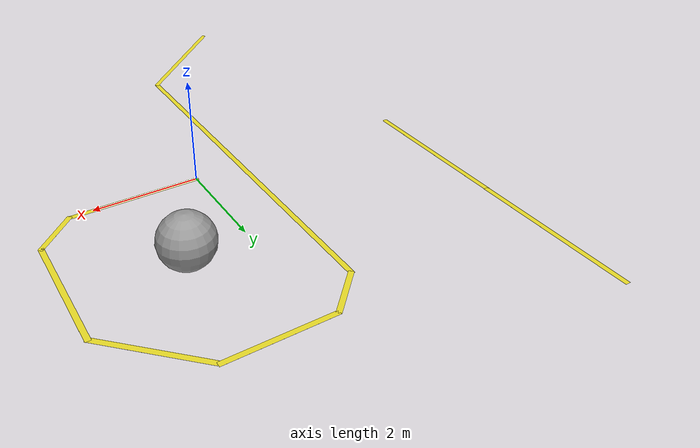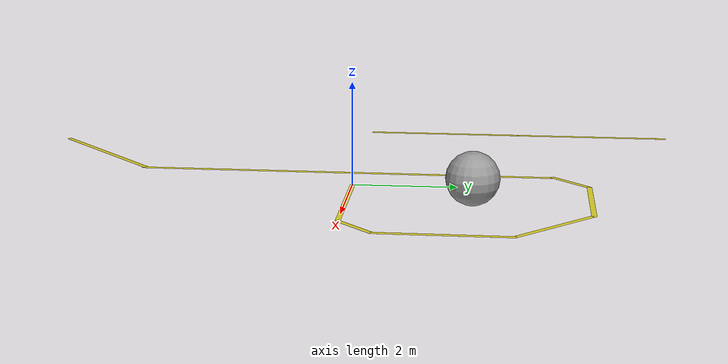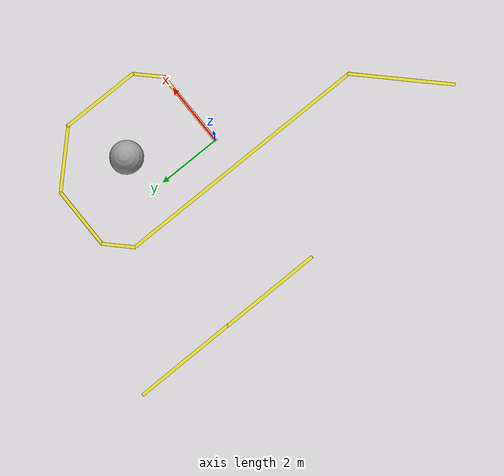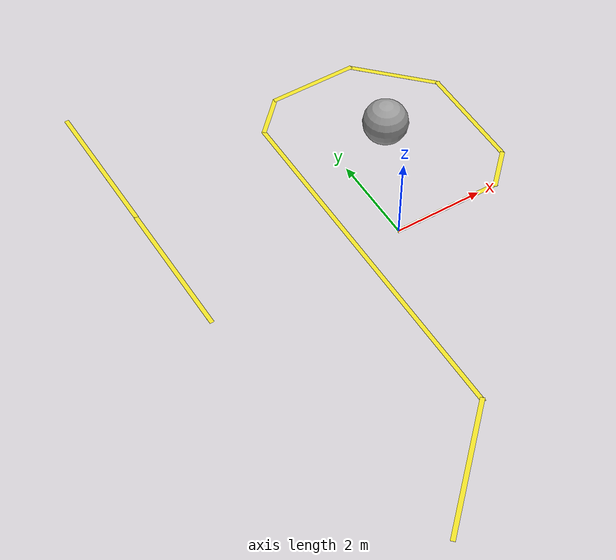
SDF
<sdf version="1.7">
 <world name="default">
  <light name="sun" type="directional">
   <pose>0 0 10 0 -0 0</pose>
   <diffuse>0.8 0.8 0.8 1</diffuse>
   <specular>0.1 0.1 0.1 1</specular>
   <attenuation>
    <range>1000</range>
    <constant>0.9</constant>
    <linear>0.01</linear>
    <quadratic>0.001</quadratic>
   </attenuation>
   <direction>-0.5 0.5 -1</direction>
   <spot><inner_angle>0</inner_angle><outer_angle>0</outer_angle><falloff>0</falloff></spot>
  </light>
  <gravity>0 0 -9.8</gravity>
  <magnetic_field>6e-06 2.3e-05 -4.2e-05</magnetic_field>
  <atmosphere type="adiabatic"/>
  <physics name="default_physics" default="0" type="ode">
   <max_step_size>0.001</max_step_size>
   <real_time_factor>1</real_time_factor>
   <real_time_update_rate>1000</real_time_update_rate>
  </physics>
  <scene><ambient>0.4 0.4 0.4 1</ambient><background>0.7 0.7 0.7 1</background><shadows>1</shadows></scene>
  <spherical_coordinates>
   <surface_model>EARTH_WGS84</surface_model>
   <latitude_deg>0</latitude_deg>
   <longitude_deg>0</longitude_deg>
   <elevation>0</elevation>
   <heading_deg>0</heading_deg>
  </spherical_coordinates>
  <model name="yellow line_0">
   <static>1</static>
   <link name="link_ground">
    <collision name="collision">
     <geometry><plane><normal>0 0 1</normal><size>0.1 2.5</size></plane></geometry>
     <surface><friction><ode><mu>100</mu><mu2>50</mu2></ode></friction></surface>
    </collision>
    <visual name="visual_ground">
     <cast_shadows>0</cast_shadows>
     <geometry><plane><normal>0 0 1</normal><size>0.1 2.5</size></plane></geometry>
     <material>
      <script><uri>file://media/materials/scripts/gazebo.material</uri><name>Gazebo/Yellow</name></script>
     </material>
    </visual>
   </link>
   <pose>1.21409 0 0 0 -0 1.57</pose>
  </model>
  <model name="yellow line_1">
   <static>1</static>
   <link name="link_ground">
    <collision name="collision">
     <geometry><plane><normal>0 0 1</normal><size>0.1 1</size></plane></geometry>
     <surface><friction><ode><mu>100</mu><mu2>50</mu2></ode></friction></surface>
    </collision>
    <visual name="visual_ground">
     <cast_shadows>0</cast_shadows>
     <geometry><plane><normal>0 0 1</normal><size>0.1 1</size></plane></geometry>
     <material>
      <script><uri>file://media/materials/scripts/gazebo.material</uri><name>Gazebo/Yellow</name></script>
     </material>
    </visual>
   </link>
   <pose>2.75 0.32 0 0 0 -0.784999</pose>
  </model>
  <model name="yellow line_2">
   <static>1</static>
   <link name="link_ground">
    <collision name="collision">
     <geometry><plane><normal>0 0 1</normal><size>0.1 2.5</size></plane></geometry>
     <surface><friction><ode><mu>100</mu><mu2>50</mu2></ode></friction></surface>
    </collision>
    <visual name="visual_ground">
     <cast_shadows>0</cast_shadows>
     <geometry><plane><normal>0 0 1</normal><size>0.1 2.5</size></plane></geometry>
     <material>
      <script><uri>file://media/materials/scripts/gazebo.material</uri><name>Gazebo/Yellow</name></script>
     </material>
    </visual>
   </link>
   <pose>3.08297 1.87937 0 0 -0 0</pose>
  </model>
  <model name="yellow line_3">
   <static>1</static>
   <link name="link_ground">
    <collision name="collision">
     <geometry><plane><normal>0 0 1</normal><size>0.1 2</size></plane></geometry>
     <surface><friction><ode><mu>100</mu><mu2>50</mu2></ode></friction></surface>
    </collision>
    <visual name="visual_ground">
     <cast_shadows>0</cast_shadows>
     <geometry><plane><normal>0 0 1</normal><size>0.1 2</size></plane></geometry>
     <material>
      <script><uri>file://media/materials/scripts/gazebo.material</uri><name>Gazebo/Yellow</name></script>
     </material>
    </visual>
   </link>
   <pose>2.4 3.78 0 0 -0 0.785</pose>
  </model>
  <model name="yellow line_4">
   <static>1</static>
   <link name="link_ground">
    <collision name="collision">
     <geometry><plane><normal>0 0 1</normal><size>0.1 2</size></plane></geometry>
     <surface><friction><ode><mu>100</mu><mu2>50</mu2></ode></friction></surface>
    </collision>
    <visual name="visual_ground">
     <cast_shadows>0</cast_shadows>
     <geometry><plane><normal>0 0 1</normal><size>0.1 2</size></plane></geometry>
     <material>
      <script><uri>file://media/materials/scripts/gazebo.material</uri><name>Gazebo/Yellow</name></script>
     </material>
    </visual>
   </link>
   <pose>0.72 4.5 0 0 -0 1.57</pose>
  </model>
  <model name="yellow line_5">
   <static>1</static>
   <link name="link_ground">
    <collision name="collision">
     <geometry><plane><normal>0 0 1</normal><size>0.1 1</size></plane></geometry>
     <surface><friction><ode><mu>100</mu><mu2>50</mu2></ode></friction></surface>
    </collision>
    <visual name="visual_ground">
     <cast_shadows>0</cast_shadows>
     <geometry><plane><normal>0 0 1</normal><size>0.1 1</size></plane></geometry>
     <material>
      <script><uri>file://media/materials/scripts/gazebo.material</uri><name>Gazebo/Yellow</name></script>
     </material>
    </visual>
   </link>
   <pose>-0.6 4.16 0 0 0 -0.785</pose>
  </model>
  <model name="yellow line_7">
   <static>1</static>
   <link name="link_ground">
    <collision name="collision">
     <geometry><plane><normal>0 0 1</normal><size>0.1 8.2</size></plane></geometry>
     <surface><friction><ode><mu>100</mu><mu2>50</mu2></ode></friction></surface>
    </collision>
    <visual name="visual_ground">
     <cast_shadows>0</cast_shadows>
     <geometry><plane><normal>0 0 1</normal><size>0.1 8.2</size></plane></geometry>
     <material>
      <script><uri>file://media/materials/scripts/gazebo.material</uri><name>Gazebo/Yellow</name></script>
     </material>
    </visual>
   </link>
   <pose>-0.94783 -0.25 0 0 -0 0</pose>
  </model>
  <model name="yellow line_8">
   <static>1</static>
   <link name="link_ground">
    <collision name="collision">
     <geometry><plane><normal>0 0 1</normal><size>0.1 3.2</size></plane></geometry>
     <surface><friction><ode><mu>100</mu><mu2>50</mu2></ode></friction></surface>
    </collision>
    <visual name="visual_ground">
     <cast_shadows>0</cast_shadows>
     <geometry><plane><normal>0 0 1</normal><size>0.1 3.2</size></plane></geometry>
     <material>
      <script><uri>file://media/materials/scripts/gazebo.material</uri><name>Gazebo/Yellow</name></script>
     </material>
    </visual>
   </link>
   <pose>-2.05 -5.4 0 0 0 -0.785</pose>
  </model>
  <audio><device>default</device></audio>
  <model name="unit_sphere">
   <pose>1.17832 2.32424 0.5 0 -0 0</pose>
   <link name="link">
    <inertial>
     <mass>1</mass>
     <inertia><ixx>0.1</ixx><ixy>0</ixy><ixz>0</ixz><iyy>0.1</iyy><iyz>0</iyz><izz>0.1</izz></inertia>
    </inertial>
    <collision name="collision"><geometry><sphere><radius>0.5</radius></sphere></geometry></collision>
    <visual name="visual">
     <geometry><sphere><radius>0.5</radius></sphere></geometry>
     <material>
      <script><name>Gazebo/Grey</name><uri>file://media/materials/scripts/gazebo.material</uri></script>
     </material>
    </visual>
   </link>
  </model>
  <model name="yellow line">
   <static>1</static>
   <link name="link_ground">
    <collision name="collision">
     <geometry><plane><normal>0 0 1</normal><size>0.1 3.2</size></plane></geometry>
     <surface><friction><ode><mu>100</mu><mu2>50</mu2></ode></friction></surface>
    </collision>
    <visual name="visual_ground">
     <cast_shadows>0</cast_shadows>
     <geometry><plane><normal>0 0 1</normal><size>0.1 3.2</size></plane></geometry>
     <material>
      <script><uri>file://media/materials/scripts/gazebo.material</uri><name>Gazebo/Yellow</name></script>
     </material>
    </visual>
   </link>
   <pose>-4.4398 1.55992 0 0 -0 0</pose>
  </model>
  <model name="yellow line_6">
   <static>1</static>
   <link name="link_ground">
    <collision name="collision">
     <geometry><plane><normal>0 0 1</normal><size>0.1 3.2</size></plane></geometry>
     <surface><friction><ode><mu>100</mu><mu2>50</mu2></ode></friction></surface>
    </collision>
    <visual name="visual_ground">
     <cast_shadows>0</cast_shadows>
     <geometry><plane><normal>0 0 1</normal><size>0.1 3.2</size></plane></geometry>
     <material>
      <script><uri>file://media/materials/scripts/gazebo.material</uri><name>Gazebo/Yellow</name></script>
     </material>
    </visual>
   </link>
   <pose>-4.4343 4.72917 0 0 -0 0</pose>
  </model>
 </world>
</sdf>
